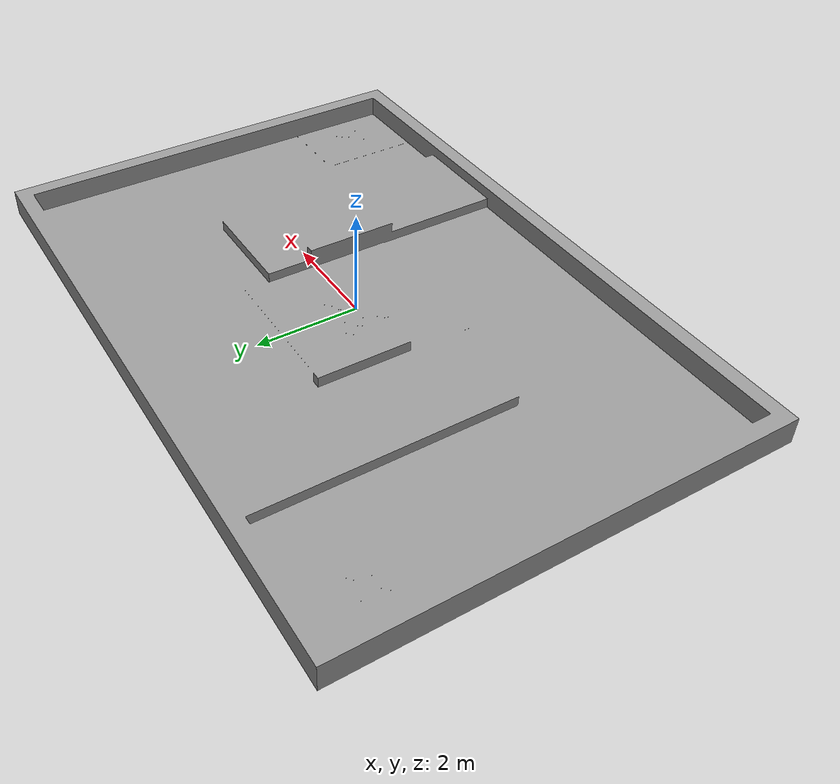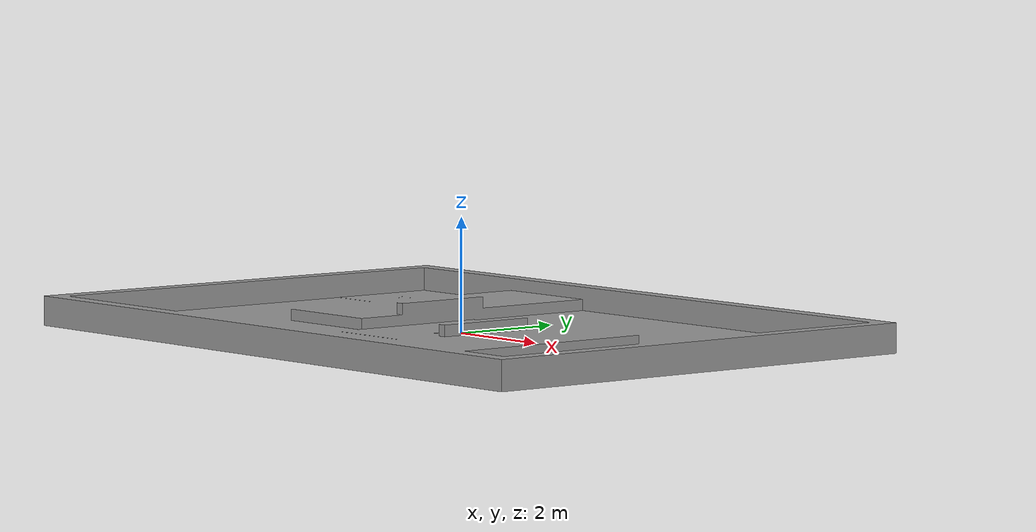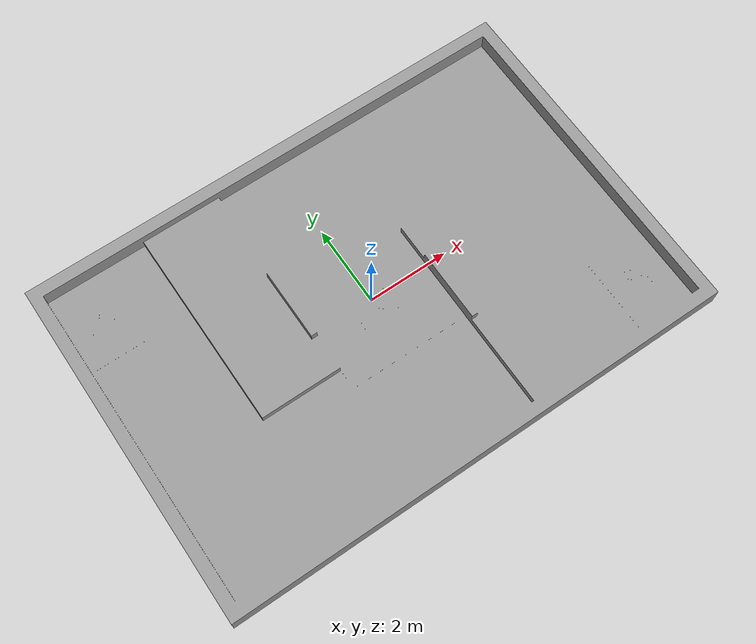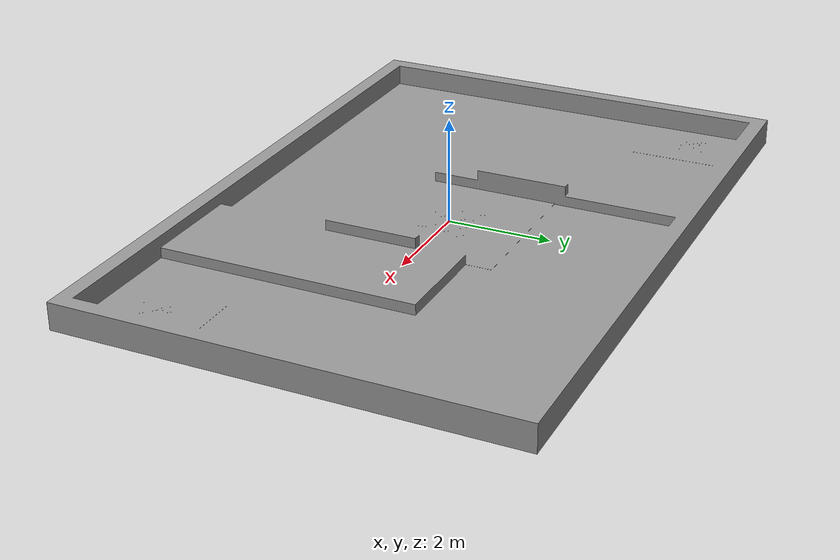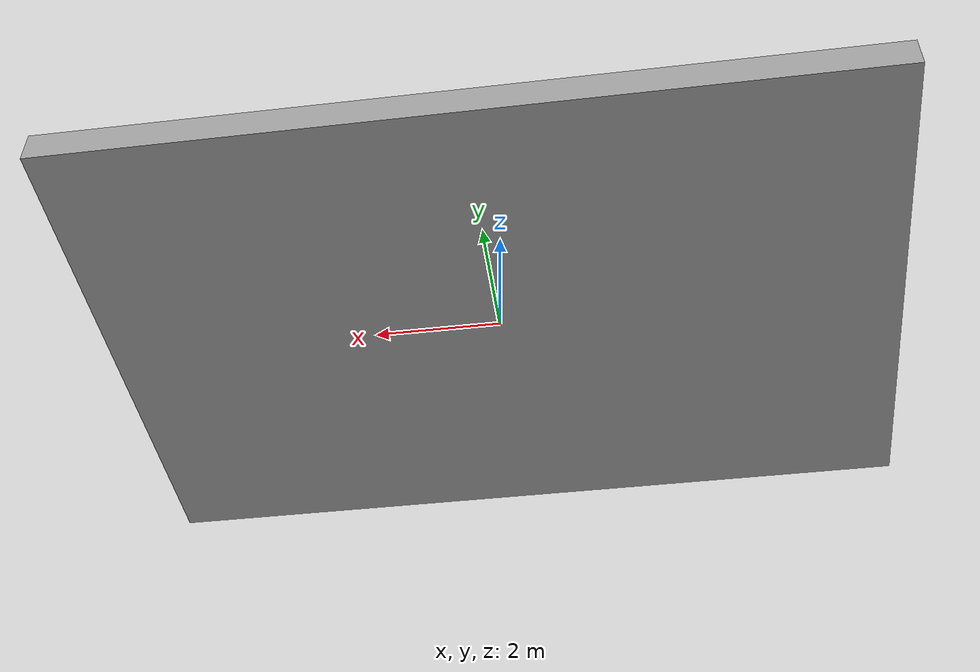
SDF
<?xml version='1.0'?>
<sdf version='1.7'>
  <model name='RMUL2026'>
    <link name='link_0'>
      <inertial>
        <mass>1</mass>
        <inertia>
          <ixx>0.166667</ixx>
          <ixy>0</ixy>
          <ixz>0</ixz>
          <iyy>0.166667</iyy>
          <iyz>0</iyz>
          <izz>0.166667</izz>
        </inertia>
      </inertial>
      <pose>0 -0 0 0 -0 0</pose>
      <visual name='visual'>
        <pose>0 0 0 0 -0 0</pose>
        <geometry>
          <mesh>
            <uri>/home/ros2/Desktop/pb_rmsimulation/src/rm_simulation/pb_rm_simulation/meshes/RMUL2026_world/meshes/rmul2026.stl</uri>
            <scale>1 1 1</scale>
          </mesh>
        </geometry>
        <material>
          <lighting>1</lighting>
          <script>
            <uri>file://media/materials/scripts/gazebo.material</uri>
            <name>Gazebo/Grey</name>
          </script>
          <shader type='pixel'/>
        </material>
        <transparency>0</transparency>
        <cast_shadows>1</cast_shadows>
      </visual>
      <collision name='collision'>
        <laser_retro>0</laser_retro>
        <max_contacts>10</max_contacts>
        <pose>0 0 0 0 -0 0</pose>
        <geometry>
          <mesh>
            <uri>/home/ros2/Desktop/pb_rmsimulation/src/rm_simulation/pb_rm_simulation/meshes/RMUL2026_world/meshes/rmul2026.stl</uri>
            <scale>1 1 1</scale>
          </mesh>
        </geometry>
        <surface>
          <friction>
            <ode>
              <mu>1</mu>
              <mu2>1</mu2>
              <fdir1>0 0 0</fdir1>
              <slip1>0</slip1>
              <slip2>0</slip2>
            </ode>
            <torsional>
              <coefficient>1</coefficient>
              <patch_radius>0</patch_radius>
              <surface_radius>0</surface_radius>
              <use_patch_radius>1</use_patch_radius>
              <ode>
                <slip>0</slip>
              </ode>
            </torsional>
          </friction>
          <bounce>
            <restitution_coefficient>0</restitution_coefficient>
            <threshold>1e+06</threshold>
          </bounce>
          <contact>
            <collide_without_contact>0</collide_without_contact>
            <collide_without_contact_bitmask>1</collide_without_contact_bitmask>
            <collide_bitmask>1</collide_bitmask>
            <ode>
              <soft_cfm>0</soft_cfm>
              <soft_erp>0.2</soft_erp>
              <kp>1e+13</kp>
              <kd>1</kd>
              <max_vel>0.01</max_vel>
              <min_depth>0</min_depth>
            </ode>
            <bullet>
              <split_impulse>1</split_impulse>
              <split_impulse_penetration_threshold>-0.01</split_impulse_penetration_threshold>
              <soft_cfm>0</soft_cfm>
              <soft_erp>0.2</soft_erp>
              <kp>1e+13</kp>
              <kd>1</kd>
            </bullet>
          </contact>
        </surface>
      </collision>
    </link>
    <static>1</static>
    <allow_auto_disable>1</allow_auto_disable>
  </model>
</sdf>
